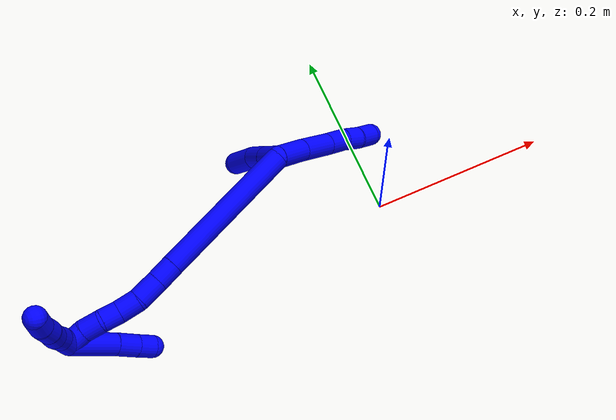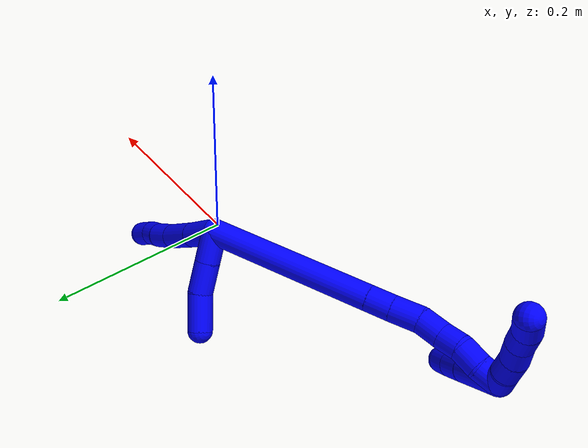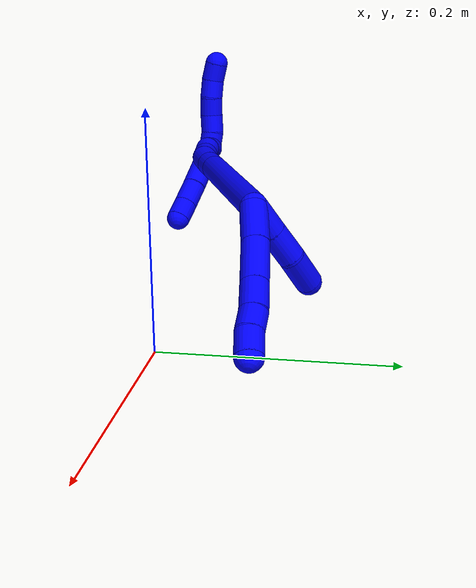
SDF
<sdf version="1.7">
 <world name="default">
  <model name="1">
   <static>0</static>
   <link name="1">
    <collision name="collision-cylinder-e_1_2_8">
     <pose>-0.002069 0.002162 -0.019111 -3.02896 -0.107177 1.52103</pose>
     <geometry><cylinder><radius>0.0125</radius><length>0.038688</length></cylinder></geometry>
     <surface>
      <friction><ode><mu>1.16</mu><mu2>1.16</mu2><slip1>0</slip1><slip2>0</slip2></ode></friction>
      <contact><ode><kp>1e+06</kp><kd>1</kd><max_vel>0</max_vel><min_depth>0.001</min_depth></ode></contact>
     </surface>
    </collision>
    <visual name="visual-cylinder-e_1_2_8">
     <pose>-0.002069 0.002162 -0.019111 -3.02896 -0.107177 1.52103</pose>
     <geometry><cylinder><radius>0.0125</radius><length>0.038688</length></cylinder></geometry>
     <material><ambient>0 0 1 1</ambient></material>
    </visual>
    <collision name="collision-cylinder-e_2_8_9">
     <pose>-0.005865 0.005421 -0.058577 -3.08773 -0.084512 2.0071</pose>
     <geometry><cylinder><radius>0.0125</radius><length>0.040915</length></cylinder></geometry>
     <surface>
      <friction><ode><mu>1.16</mu><mu2>1.16</mu2><slip1>0</slip1><slip2>0</slip2></ode></friction>
      <contact><ode><kp>1e+06</kp><kd>1</kd><max_vel>0</max_vel><min_depth>0.001</min_depth></ode></contact>
     </surface>
    </collision>
    <visual name="visual-cylinder-e_2_8_9">
     <pose>-0.005865 0.005421 -0.058577 -3.08773 -0.084512 2.0071</pose>
     <geometry><cylinder><radius>0.0125</radius><length>0.040915</length></cylinder></geometry>
     <material><ambient>0 0 1 1</ambient></material>
    </visual>
    <collision name="collision-cylinder-e_3_9_10">
     <pose>-0.007653 0.007154 -0.092827 -3.09585 -0.004354 0.18976</pose>
     <geometry><cylinder><radius>0.0125</radius><length>0.027818</length></cylinder></geometry>
     <surface>
      <friction><ode><mu>1.16</mu><mu2>1.16</mu2><slip1>0</slip1><slip2>0</slip2></ode></friction>
      <contact><ode><kp>1e+06</kp><kd>1</kd><max_vel>0</max_vel><min_depth>0.001</min_depth></ode></contact>
     </surface>
    </collision>
    <visual name="visual-cylinder-e_3_9_10">
     <pose>-0.007653 0.007154 -0.092827 -3.09585 -0.004354 0.18976</pose>
     <geometry><cylinder><radius>0.0125</radius><length>0.027818</length></cylinder></geometry>
     <material><ambient>0 0 1 1</ambient></material>
    </visual>
    <collision name="collision-cylinder-e_4_10_11">
     <pose>-0.007721 0.006824 -0.116698 3.045 -0.000715 -0.014784</pose>
     <geometry><cylinder><radius>0.0125</radius><length>0.020047</length></cylinder></geometry>
     <surface>
      <friction><ode><mu>1.16</mu><mu2>1.16</mu2><slip1>0</slip1><slip2>0</slip2></ode></friction>
      <contact><ode><kp>1e+06</kp><kd>1</kd><max_vel>0</max_vel><min_depth>0.001</min_depth></ode></contact>
     </surface>
    </collision>
    <visual name="visual-cylinder-e_4_10_11">
     <pose>-0.007721 0.006824 -0.116698 3.045 -0.000715 -0.014784</pose>
     <geometry><cylinder><radius>0.0125</radius><length>0.020047</length></cylinder></geometry>
     <material><ambient>0 0 1 1</ambient></material>
    </visual>
    <collision name="collision-cylinder-e_5_11_6">
     <pose>-0.008571 0.006585 -0.137885 -3.07671 -0.074966 1.71479</pose>
     <geometry><cylinder><radius>0.0125</radius><length>0.022532</length></cylinder></geometry>
     <surface>
      <friction><ode><mu>1.16</mu><mu2>1.16</mu2><slip1>0</slip1><slip2>0</slip2></ode></friction>
      <contact><ode><kp>1e+06</kp><kd>1</kd><max_vel>0</max_vel><min_depth>0.001</min_depth></ode></contact>
     </surface>
    </collision>
    <visual name="visual-cylinder-e_5_11_6">
     <pose>-0.008571 0.006585 -0.137885 -3.07671 -0.074966 1.71479</pose>
     <geometry><cylinder><radius>0.0125</radius><length>0.022532</length></cylinder></geometry>
     <material><ambient>0 0 1 1</ambient></material>
    </visual>
    <collision name="collision-cylinder-e_1_2_12">
     <pose>-0.012327 0.008487 -0.003363 -1.9481 -0.933343 1.27614</pose>
     <geometry><cylinder><radius>0.0125</radius><length>0.030678</length></cylinder></geometry>
     <surface>
      <friction><ode><mu>1.16</mu><mu2>1.16</mu2><slip1>0</slip1><slip2>0</slip2></ode></friction>
      <contact><ode><kp>1e+06</kp><kd>1</kd><max_vel>0</max_vel><min_depth>0.001</min_depth></ode></contact>
     </surface>
    </collision>
    <visual name="visual-cylinder-e_1_2_12">
     <pose>-0.012327 0.008487 -0.003363 -1.9481 -0.933343 1.27614</pose>
     <geometry><cylinder><radius>0.0125</radius><length>0.030678</length></cylinder></geometry>
     <material><ambient>0 0 1 1</ambient></material>
    </visual>
    <collision name="collision-cylinder-e_2_12_13">
     <pose>-0.037353 0.025851 -0.010028 -1.92685 -0.929997 1.25048</pose>
     <geometry><cylinder><radius>0.0125</radius><length>0.031686</length></cylinder></geometry>
     <surface>
      <friction><ode><mu>1.16</mu><mu2>1.16</mu2><slip1>0</slip1><slip2>0</slip2></ode></friction>
      <contact><ode><kp>1e+06</kp><kd>1</kd><max_vel>0</max_vel><min_depth>0.001</min_depth></ode></contact>
     </surface>
    </collision>
    <visual name="visual-cylinder-e_2_12_13">
     <pose>-0.037353 0.025851 -0.010028 -1.92685 -0.929997 1.25048</pose>
     <geometry><cylinder><radius>0.0125</radius><length>0.031686</length></cylinder></geometry>
     <material><ambient>0 0 1 1</ambient></material>
    </visual>
    <collision name="collision-cylinder-e_3_13_5">
     <pose>-0.066857 0.043191 -0.013734 -1.61851 -1.1038 1.14687</pose>
     <geometry><cylinder><radius>0.0125</radius><length>0.037636</length></cylinder></geometry>
     <surface>
      <friction><ode><mu>1.16</mu><mu2>1.16</mu2><slip1>0</slip1><slip2>0</slip2></ode></friction>
      <contact><ode><kp>1e+06</kp><kd>1</kd><max_vel>0</max_vel><min_depth>0.001</min_depth></ode></contact>
     </surface>
    </collision>
    <visual name="visual-cylinder-e_3_13_5">
     <pose>-0.066857 0.043191 -0.013734 -1.61851 -1.1038 1.14687</pose>
     <geometry><cylinder><radius>0.0125</radius><length>0.037636</length></cylinder></geometry>
     <material><ambient>0 0 1 1</ambient></material>
    </visual>
    <collision name="collision-cylinder-e_1_2_14">
     <pose>-0.04363 -0.024755 0.064662 0.36562 -0.562281 -0.106678</pose>
     <geometry><cylinder><radius>0.0125</radius><length>0.163677</length></cylinder></geometry>
     <surface>
      <friction><ode><mu>1.16</mu><mu2>1.16</mu2><slip1>0</slip1><slip2>0</slip2></ode></friction>
      <contact><ode><kp>1e+06</kp><kd>1</kd><max_vel>0</max_vel><min_depth>0.001</min_depth></ode></contact>
     </surface>
    </collision>
    <visual name="visual-cylinder-e_1_2_14">
     <pose>-0.04363 -0.024755 0.064662 0.36562 -0.562281 -0.106678</pose>
     <geometry><cylinder><radius>0.0125</radius><length>0.163677</length></cylinder></geometry>
     <material><ambient>0 0 1 1</ambient></material>
    </visual>
    <collision name="collision-cylinder-e_2_14_15">
     <pose>-0.093599 -0.053163 0.138504 0.37875 -0.570556 -0.112308</pose>
     <geometry><cylinder><radius>0.0125</radius><length>0.023477</length></cylinder></geometry>
     <surface>
      <friction><ode><mu>1.16</mu><mu2>1.16</mu2><slip1>0</slip1><slip2>0</slip2></ode></friction>
      <contact><ode><kp>1e+06</kp><kd>1</kd><max_vel>0</max_vel><min_depth>0.001</min_depth></ode></contact>
     </surface>
    </collision>
    <visual name="visual-cylinder-e_2_14_15">
     <pose>-0.093599 -0.053163 0.138504 0.37875 -0.570556 -0.112308</pose>
     <geometry><cylinder><radius>0.0125</radius><length>0.023477</length></cylinder></geometry>
     <material><ambient>0 0 1 1</ambient></material>
    </visual>
    <collision name="collision-cylinder-e_3_15_16">
     <pose>-0.106845 -0.06099 0.158955 0.354638 -0.521438 -0.095546</pose>
     <geometry><cylinder><radius>0.0125</radius><length>0.027726</length></cylinder></geometry>
     <surface>
      <friction><ode><mu>1.16</mu><mu2>1.16</mu2><slip1>0</slip1><slip2>0</slip2></ode></friction>
      <contact><ode><kp>1e+06</kp><kd>1</kd><max_vel>0</max_vel><min_depth>0.001</min_depth></ode></contact>
     </surface>
    </collision>
    <visual name="visual-cylinder-e_3_15_16">
     <pose>-0.106845 -0.06099 0.158955 0.354638 -0.521438 -0.095546</pose>
     <geometry><cylinder><radius>0.0125</radius><length>0.027726</length></cylinder></geometry>
     <material><ambient>0 0 1 1</ambient></material>
    </visual>
    <collision name="collision-cylinder-e_4_16_17">
     <pose>-0.120544 -0.06562 0.179715 0.047997 -0.620874 -0.015401</pose>
     <geometry><cylinder><radius>0.0125</radius><length>0.023355</length></cylinder></geometry>
     <surface>
      <friction><ode><mu>1.16</mu><mu2>1.16</mu2><slip1>0</slip1><slip2>0</slip2></ode></friction>
      <contact><ode><kp>1e+06</kp><kd>1</kd><max_vel>0</max_vel><min_depth>0.001</min_depth></ode></contact>
     </surface>
    </collision>
    <visual name="visual-cylinder-e_4_16_17">
     <pose>-0.120544 -0.06562 0.179715 0.047997 -0.620874 -0.015401</pose>
     <geometry><cylinder><radius>0.0125</radius><length>0.023355</length></cylinder></geometry>
     <material><ambient>0 0 1 1</ambient></material>
    </visual>
    <collision name="collision-cylinder-e_5_17_18">
     <pose>-0.13181 -0.06618 0.198162 0.011711 -0.463019 -0.002761</pose>
     <geometry><cylinder><radius>0.0125</radius><length>0.02003</length></cylinder></geometry>
     <surface>
      <friction><ode><mu>1.16</mu><mu2>1.16</mu2><slip1>0</slip1><slip2>0</slip2></ode></friction>
      <contact><ode><kp>1e+06</kp><kd>1</kd><max_vel>0</max_vel><min_depth>0.001</min_depth></ode></contact>
     </surface>
    </collision>
    <visual name="visual-cylinder-e_5_17_18">
     <pose>-0.13181 -0.06618 0.198162 0.011711 -0.463019 -0.002761</pose>
     <geometry><cylinder><radius>0.0125</radius><length>0.02003</length></cylinder></geometry>
     <material><ambient>0 0 1 1</ambient></material>
    </visual>
    <collision name="collision-cylinder-e_6_18_19">
     <pose>-0.143731 -0.065536 0.214824 -0.096985 -0.766229 0.039114</pose>
     <geometry><cylinder><radius>0.0125</radius><length>0.02148</length></cylinder></geometry>
     <surface>
      <friction><ode><mu>1.16</mu><mu2>1.16</mu2><slip1>0</slip1><slip2>0</slip2></ode></friction>
      <contact><ode><kp>1e+06</kp><kd>1</kd><max_vel>0</max_vel><min_depth>0.001</min_depth></ode></contact>
     </surface>
    </collision>
    <visual name="visual-cylinder-e_6_18_19">
     <pose>-0.143731 -0.065536 0.214824 -0.096985 -0.766229 0.039114</pose>
     <geometry><cylinder><radius>0.0125</radius><length>0.02148</length></cylinder></geometry>
     <material><ambient>0 0 1 1</ambient></material>
    </visual>
    <collision name="collision-cylinder-e_7_19_1">
     <pose>-0.158584 -0.066203 0.229287 0.206562 -0.820167 -0.090058</pose>
     <geometry><cylinder><radius>0.0125</radius><length>0.020254</length></cylinder></geometry>
     <surface>
      <friction><ode><mu>1.16</mu><mu2>1.16</mu2><slip1>0</slip1><slip2>0</slip2></ode></friction>
      <contact><ode><kp>1e+06</kp><kd>1</kd><max_vel>0</max_vel><min_depth>0.001</min_depth></ode></contact>
     </surface>
    </collision>
    <visual name="visual-cylinder-e_7_19_1">
     <pose>-0.158584 -0.066203 0.229287 0.206562 -0.820167 -0.090058</pose>
     <geometry><cylinder><radius>0.0125</radius><length>0.020254</length></cylinder></geometry>
     <material><ambient>0 0 1 1</ambient></material>
    </visual>
    <collision name="collision-cylinder-e_1_1_20">
     <pose>-0.15866 -0.066599 0.242775 -0.150647 0.822582 -0.065808</pose>
     <geometry><cylinder><radius>0.0125</radius><length>0.02</length></cylinder></geometry>
     <surface>
      <friction><ode><mu>1.16</mu><mu2>1.16</mu2><slip1>0</slip1><slip2>0</slip2></ode></friction>
      <contact><ode><kp>1e+06</kp><kd>1</kd><max_vel>0</max_vel><min_depth>0.001</min_depth></ode></contact>
     </surface>
    </collision>
    <visual name="visual-cylinder-e_1_1_20">
     <pose>-0.15866 -0.066599 0.242775 -0.150647 0.822582 -0.065808</pose>
     <geometry><cylinder><radius>0.0125</radius><length>0.02</length></cylinder></geometry>
     <material><ambient>0 0 1 1</ambient></material>
    </visual>
    <collision name="collision-cylinder-e_2_20_21">
     <pose>-0.144009 -0.066565 0.25624 0.145478 0.821549 0.063454</pose>
     <geometry><cylinder><radius>0.0125</radius><length>0.02</length></cylinder></geometry>
     <surface>
      <friction><ode><mu>1.16</mu><mu2>1.16</mu2><slip1>0</slip1><slip2>0</slip2></ode></friction>
      <contact><ode><kp>1e+06</kp><kd>1</kd><max_vel>0</max_vel><min_depth>0.001</min_depth></ode></contact>
     </surface>
    </collision>
    <visual name="visual-cylinder-e_2_20_21">
     <pose>-0.144009 -0.066565 0.25624 0.145478 0.821549 0.063454</pose>
     <geometry><cylinder><radius>0.0125</radius><length>0.02</length></cylinder></geometry>
     <material><ambient>0 0 1 1</ambient></material>
    </visual>
    <collision name="collision-cylinder-e_3_21_22">
     <pose>-0.128345 -0.067913 0.268482 0.065345 0.986688 0.035144</pose>
     <geometry><cylinder><radius>0.0125</radius><length>0.02</length></cylinder></geometry>
     <surface>
      <friction><ode><mu>1.16</mu><mu2>1.16</mu2><slip1>0</slip1><slip2>0</slip2></ode></friction>
      <contact><ode><kp>1e+06</kp><kd>1</kd><max_vel>0</max_vel><min_depth>0.001</min_depth></ode></contact>
     </surface>
    </collision>
    <visual name="visual-cylinder-e_3_21_22">
     <pose>-0.128345 -0.067913 0.268482 0.065345 0.986688 0.035144</pose>
     <geometry><cylinder><radius>0.0125</radius><length>0.02</length></cylinder></geometry>
     <material><ambient>0 0 1 1</ambient></material>
    </visual>
    <collision name="collision-cylinder-e_4_22_23">
     <pose>-0.112499 -0.06782 0.280578 -0.068516 0.848771 -0.030968</pose>
     <geometry><cylinder><radius>0.0125</radius><length>0.02</length></cylinder></geometry>
     <surface>
      <friction><ode><mu>1.16</mu><mu2>1.16</mu2><slip1>0</slip1><slip2>0</slip2></ode></friction>
      <contact><ode><kp>1e+06</kp><kd>1</kd><max_vel>0</max_vel><min_depth>0.001</min_depth></ode></contact>
     </surface>
    </collision>
    <visual name="visual-cylinder-e_4_22_23">
     <pose>-0.112499 -0.06782 0.280578 -0.068516 0.848771 -0.030968</pose>
     <geometry><cylinder><radius>0.0125</radius><length>0.02</length></cylinder></geometry>
     <material><ambient>0 0 1 1</ambient></material>
    </visual>
    <collision name="collision-cylinder-e_5_23_4">
     <pose>-0.096684 -0.06549 0.292407 -0.344339 0.980923 -0.185178</pose>
     <geometry><cylinder><radius>0.0125</radius><length>0.02</length></cylinder></geometry>
     <surface>
      <friction><ode><mu>1.16</mu><mu2>1.16</mu2><slip1>0</slip1><slip2>0</slip2></ode></friction>
      <contact><ode><kp>1e+06</kp><kd>1</kd><max_vel>0</max_vel><min_depth>0.001</min_depth></ode></contact>
     </surface>
    </collision>
    <visual name="visual-cylinder-e_5_23_4">
     <pose>-0.096684 -0.06549 0.292407 -0.344339 0.980923 -0.185178</pose>
     <geometry><cylinder><radius>0.0125</radius><length>0.02</length></cylinder></geometry>
     <material><ambient>0 0 1 1</ambient></material>
    </visual>
    <collision name="collision-cylinder-e_1_1_24">
     <pose>-0.169761 -0.074069 0.210168 2.89737 -0.140483 -1.04114</pose>
     <geometry><cylinder><radius>0.0125</radius><length>0.053875</length></cylinder></geometry>
     <surface>
      <friction><ode><mu>1.16</mu><mu2>1.16</mu2><slip1>0</slip1><slip2>0</slip2></ode></friction>
      <contact><ode><kp>1e+06</kp><kd>1</kd><max_vel>0</max_vel><min_depth>0.001</min_depth></ode></contact>
     </surface>
    </collision>
    <visual name="visual-cylinder-e_1_1_24">
     <pose>-0.169761 -0.074069 0.210168 2.89737 -0.140483 -1.04114</pose>
     <geometry><cylinder><radius>0.0125</radius><length>0.053875</length></cylinder></geometry>
     <material><ambient>0 0 1 1</ambient></material>
    </visual>
    <collision name="collision-cylinder-e_2_24_25">
     <pose>-0.175877 -0.084097 0.172057 2.85693 -0.181871 -1.13342</pose>
     <geometry><cylinder><radius>0.0125</radius><length>0.025912</length></cylinder></geometry>
     <surface>
      <friction><ode><mu>1.16</mu><mu2>1.16</mu2><slip1>0</slip1><slip2>0</slip2></ode></friction>
      <contact><ode><kp>1e+06</kp><kd>1</kd><max_vel>0</max_vel><min_depth>0.001</min_depth></ode></contact>
     </surface>
    </collision>
    <visual name="visual-cylinder-e_2_24_25">
     <pose>-0.175877 -0.084097 0.172057 2.85693 -0.181871 -1.13342</pose>
     <geometry><cylinder><radius>0.0125</radius><length>0.025912</length></cylinder></geometry>
     <material><ambient>0 0 1 1</ambient></material>
    </visual>
    <collision name="collision-cylinder-e_3_25_3">
     <pose>-0.179654 -0.09049 0.150228 2.8564 -0.142362 -0.921883</pose>
     <geometry><cylinder><radius>0.0125</radius><length>0.020213</length></cylinder></geometry>
     <surface>
      <friction><ode><mu>1.16</mu><mu2>1.16</mu2><slip1>0</slip1><slip2>0</slip2></ode></friction>
      <contact><ode><kp>1e+06</kp><kd>1</kd><max_vel>0</max_vel><min_depth>0.001</min_depth></ode></contact>
     </surface>
    </collision>
    <visual name="visual-cylinder-e_3_25_3">
     <pose>-0.179654 -0.09049 0.150228 2.8564 -0.142362 -0.921883</pose>
     <geometry><cylinder><radius>0.0125</radius><length>0.020213</length></cylinder></geometry>
     <material><ambient>0 0 1 1</ambient></material>
    </visual>
    <collision name="collision-sphere-3">
     <pose>-0.181088 -0.093305 0.140628 0 -0 0</pose>
     <geometry><sphere><radius>0.0125</radius></sphere></geometry>
     <surface>
      <friction><ode><mu>1.16</mu><mu2>1.16</mu2><slip1>0</slip1><slip2>0</slip2></ode></friction>
      <contact><ode><kp>1e+06</kp><kd>1</kd><max_vel>0</max_vel><min_depth>0.001</min_depth></ode></contact>
     </surface>
    </collision>
    <visual name="visual-sphere-3">
     <pose>-0.181088 -0.093305 0.140628 0 -0 0</pose>
     <geometry><sphere><radius>0.0125</radius></sphere></geometry>
     <material><ambient>0 0 1 1</ambient></material>
    </visual>
    <collision name="collision-sphere-25">
     <pose>-0.17822 -0.087676 0.159828 0 -0 0</pose>
     <geometry><sphere><radius>0.0125</radius></sphere></geometry>
     <surface>
      <friction><ode><mu>1.16</mu><mu2>1.16</mu2><slip1>0</slip1><slip2>0</slip2></ode></friction>
      <contact><ode><kp>1e+06</kp><kd>1</kd><max_vel>0</max_vel><min_depth>0.001</min_depth></ode></contact>
     </surface>
    </collision>
    <visual name="visual-sphere-25">
     <pose>-0.17822 -0.087676 0.159828 0 -0 0</pose>
     <geometry><sphere><radius>0.0125</radius></sphere></geometry>
     <material><ambient>0 0 1 1</ambient></material>
    </visual>
    <collision name="collision-sphere-24">
     <pose>-0.173533 -0.080519 0.184287 0 -0 0</pose>
     <geometry><sphere><radius>0.0125</radius></sphere></geometry>
     <surface>
      <friction><ode><mu>1.16</mu><mu2>1.16</mu2><slip1>0</slip1><slip2>0</slip2></ode></friction>
      <contact><ode><kp>1e+06</kp><kd>1</kd><max_vel>0</max_vel><min_depth>0.001</min_depth></ode></contact>
     </surface>
    </collision>
    <visual name="visual-sphere-24">
     <pose>-0.173533 -0.080519 0.184287 0 -0 0</pose>
     <geometry><sphere><radius>0.0125</radius></sphere></geometry>
     <material><ambient>0 0 1 1</ambient></material>
    </visual>
    <collision name="collision-sphere-4">
     <pose>-0.088374 -0.063612 0.297644 0 -0 0</pose>
     <geometry><sphere><radius>0.0125</radius></sphere></geometry>
     <surface>
      <friction><ode><mu>1.16</mu><mu2>1.16</mu2><slip1>0</slip1><slip2>0</slip2></ode></friction>
      <contact><ode><kp>1e+06</kp><kd>1</kd><max_vel>0</max_vel><min_depth>0.001</min_depth></ode></contact>
     </surface>
    </collision>
    <visual name="visual-sphere-4">
     <pose>-0.088374 -0.063612 0.297644 0 -0 0</pose>
     <geometry><sphere><radius>0.0125</radius></sphere></geometry>
     <material><ambient>0 0 1 1</ambient></material>
    </visual>
    <collision name="collision-sphere-23">
     <pose>-0.104994 -0.067368 0.287171 0 -0 0</pose>
     <geometry><sphere><radius>0.0125</radius></sphere></geometry>
     <surface>
      <friction><ode><mu>1.16</mu><mu2>1.16</mu2><slip1>0</slip1><slip2>0</slip2></ode></friction>
      <contact><ode><kp>1e+06</kp><kd>1</kd><max_vel>0</max_vel><min_depth>0.001</min_depth></ode></contact>
     </surface>
    </collision>
    <visual name="visual-sphere-23">
     <pose>-0.104994 -0.067368 0.287171 0 -0 0</pose>
     <geometry><sphere><radius>0.0125</radius></sphere></geometry>
     <material><ambient>0 0 1 1</ambient></material>
    </visual>
    <collision name="collision-sphere-22">
     <pose>-0.120003 -0.068273 0.273984 0 -0 0</pose>
     <geometry><sphere><radius>0.0125</radius></sphere></geometry>
     <surface>
      <friction><ode><mu>1.16</mu><mu2>1.16</mu2><slip1>0</slip1><slip2>0</slip2></ode></friction>
      <contact><ode><kp>1e+06</kp><kd>1</kd><max_vel>0</max_vel><min_depth>0.001</min_depth></ode></contact>
     </surface>
    </collision>
    <visual name="visual-sphere-22">
     <pose>-0.120003 -0.068273 0.273984 0 -0 0</pose>
     <geometry><sphere><radius>0.0125</radius></sphere></geometry>
     <material><ambient>0 0 1 1</ambient></material>
    </visual>
    <collision name="collision-sphere-21">
     <pose>-0.136687 -0.067553 0.262979 0 -0 0</pose>
     <geometry><sphere><radius>0.0125</radius></sphere></geometry>
     <surface>
      <friction><ode><mu>1.16</mu><mu2>1.16</mu2><slip1>0</slip1><slip2>0</slip2></ode></friction>
      <contact><ode><kp>1e+06</kp><kd>1</kd><max_vel>0</max_vel><min_depth>0.001</min_depth></ode></contact>
     </surface>
    </collision>
    <visual name="visual-sphere-21">
     <pose>-0.136687 -0.067553 0.262979 0 -0 0</pose>
     <geometry><sphere><radius>0.0125</radius></sphere></geometry>
     <material><ambient>0 0 1 1</ambient></material>
    </visual>
    <collision name="collision-sphere-20">
     <pose>-0.151331 -0.065578 0.249501 0 -0 0</pose>
     <geometry><sphere><radius>0.0125</radius></sphere></geometry>
     <surface>
      <friction><ode><mu>1.16</mu><mu2>1.16</mu2><slip1>0</slip1><slip2>0</slip2></ode></friction>
      <contact><ode><kp>1e+06</kp><kd>1</kd><max_vel>0</max_vel><min_depth>0.001</min_depth></ode></contact>
     </surface>
    </collision>
    <visual name="visual-sphere-20">
     <pose>-0.151331 -0.065578 0.249501 0 -0 0</pose>
     <geometry><sphere><radius>0.0125</radius></sphere></geometry>
     <material><ambient>0 0 1 1</ambient></material>
    </visual>
    <collision name="collision-sphere-6">
     <pose>-0.009415 0.007314 -0.149096 0 -0 0</pose>
     <geometry><sphere><radius>0.0125</radius></sphere></geometry>
     <surface>
      <friction><ode><mu>1.16</mu><mu2>1.16</mu2><slip1>0</slip1><slip2>0</slip2></ode></friction>
      <contact><ode><kp>1e+06</kp><kd>1</kd><max_vel>0</max_vel><min_depth>0.001</min_depth></ode></contact>
     </surface>
    </collision>
    <visual name="visual-sphere-6">
     <pose>-0.009415 0.007314 -0.149096 0 -0 0</pose>
     <geometry><sphere><radius>0.0125</radius></sphere></geometry>
     <material><ambient>0 0 1 1</ambient></material>
    </visual>
    <collision name="collision-sphere-11">
     <pose>-0.007728 0.005857 -0.126675 0 -0 0</pose>
     <geometry><sphere><radius>0.0125</radius></sphere></geometry>
     <surface>
      <friction><ode><mu>1.16</mu><mu2>1.16</mu2><slip1>0</slip1><slip2>0</slip2></ode></friction>
      <contact><ode><kp>1e+06</kp><kd>1</kd><max_vel>0</max_vel><min_depth>0.001</min_depth></ode></contact>
     </surface>
    </collision>
    <visual name="visual-sphere-11">
     <pose>-0.007728 0.005857 -0.126675 0 -0 0</pose>
     <geometry><sphere><radius>0.0125</radius></sphere></geometry>
     <material><ambient>0 0 1 1</ambient></material>
    </visual>
    <collision name="collision-sphere-10">
     <pose>-0.007713 0.00779 -0.106721 0 -0 0</pose>
     <geometry><sphere><radius>0.0125</radius></sphere></geometry>
     <surface>
      <friction><ode><mu>1.16</mu><mu2>1.16</mu2><slip1>0</slip1><slip2>0</slip2></ode></friction>
      <contact><ode><kp>1e+06</kp><kd>1</kd><max_vel>0</max_vel><min_depth>0.001</min_depth></ode></contact>
     </surface>
    </collision>
    <visual name="visual-sphere-10">
     <pose>-0.007713 0.00779 -0.106721 0 -0 0</pose>
     <geometry><sphere><radius>0.0125</radius></sphere></geometry>
     <material><ambient>0 0 1 1</ambient></material>
    </visual>
    <collision name="collision-sphere-9">
     <pose>-0.007592 0.006518 -0.078932 0 -0 0</pose>
     <geometry><sphere><radius>0.0125</radius></sphere></geometry>
     <surface>
      <friction><ode><mu>1.16</mu><mu2>1.16</mu2><slip1>0</slip1><slip2>0</slip2></ode></friction>
      <contact><ode><kp>1e+06</kp><kd>1</kd><max_vel>0</max_vel><min_depth>0.001</min_depth></ode></contact>
     </surface>
    </collision>
    <visual name="visual-sphere-9">
     <pose>-0.007592 0.006518 -0.078932 0 -0 0</pose>
     <geometry><sphere><radius>0.0125</radius></sphere></geometry>
     <material><ambient>0 0 1 1</ambient></material>
    </visual>
    <collision name="collision-sphere-2">
     <geometry><sphere><radius>0.0125</radius></sphere></geometry>
     <surface>
      <friction><ode><mu>1.16</mu><mu2>1.16</mu2><slip1>0</slip1><slip2>0</slip2></ode></friction>
      <contact><ode><kp>1e+06</kp><kd>1</kd><max_vel>0</max_vel><min_depth>0.001</min_depth></ode></contact>
     </surface>
    </collision>
    <visual name="visual-sphere-2">
     <geometry><sphere><radius>0.0125</radius></sphere></geometry>
     <material><ambient>0 0 1 1</ambient></material>
    </visual>
    <collision name="collision-sphere-19">
     <pose>-0.151178 -0.064786 0.222527 0 -0 0</pose>
     <geometry><sphere><radius>0.0125</radius></sphere></geometry>
     <surface>
      <friction><ode><mu>1.16</mu><mu2>1.16</mu2><slip1>0</slip1><slip2>0</slip2></ode></friction>
      <contact><ode><kp>1e+06</kp><kd>1</kd><max_vel>0</max_vel><min_depth>0.001</min_depth></ode></contact>
     </surface>
    </collision>
    <visual name="visual-sphere-19">
     <pose>-0.151178 -0.064786 0.222527 0 -0 0</pose>
     <geometry><sphere><radius>0.0125</radius></sphere></geometry>
     <material><ambient>0 0 1 1</ambient></material>
    </visual>
    <collision name="collision-sphere-8">
     <pose>-0.004139 0.004324 -0.038222 0 -0 0</pose>
     <geometry><sphere><radius>0.0125</radius></sphere></geometry>
     <surface>
      <friction><ode><mu>1.16</mu><mu2>1.16</mu2><slip1>0</slip1><slip2>0</slip2></ode></friction>
      <contact><ode><kp>1e+06</kp><kd>1</kd><max_vel>0</max_vel><min_depth>0.001</min_depth></ode></contact>
     </surface>
    </collision>
    <visual name="visual-sphere-8">
     <pose>-0.004139 0.004324 -0.038222 0 -0 0</pose>
     <geometry><sphere><radius>0.0125</radius></sphere></geometry>
     <material><ambient>0 0 1 1</ambient></material>
    </visual>
    <collision name="collision-sphere-12">
     <pose>-0.024653 0.016974 -0.006727 0 -0 0</pose>
     <geometry><sphere><radius>0.0125</radius></sphere></geometry>
     <surface>
      <friction><ode><mu>1.16</mu><mu2>1.16</mu2><slip1>0</slip1><slip2>0</slip2></ode></friction>
      <contact><ode><kp>1e+06</kp><kd>1</kd><max_vel>0</max_vel><min_depth>0.001</min_depth></ode></contact>
     </surface>
    </collision>
    <visual name="visual-sphere-12">
     <pose>-0.024653 0.016974 -0.006727 0 -0 0</pose>
     <geometry><sphere><radius>0.0125</radius></sphere></geometry>
     <material><ambient>0 0 1 1</ambient></material>
    </visual>
    <collision name="collision-sphere-13">
     <pose>-0.050054 0.034729 -0.01333 0 -0 0</pose>
     <geometry><sphere><radius>0.0125</radius></sphere></geometry>
     <surface>
      <friction><ode><mu>1.16</mu><mu2>1.16</mu2><slip1>0</slip1><slip2>0</slip2></ode></friction>
      <contact><ode><kp>1e+06</kp><kd>1</kd><max_vel>0</max_vel><min_depth>0.001</min_depth></ode></contact>
     </surface>
    </collision>
    <visual name="visual-sphere-13">
     <pose>-0.050054 0.034729 -0.01333 0 -0 0</pose>
     <geometry><sphere><radius>0.0125</radius></sphere></geometry>
     <material><ambient>0 0 1 1</ambient></material>
    </visual>
    <collision name="collision-sphere-5">
     <pose>-0.083659 0.051653 -0.014138 0 -0 0</pose>
     <geometry><sphere><radius>0.0125</radius></sphere></geometry>
     <surface>
      <friction><ode><mu>1.16</mu><mu2>1.16</mu2><slip1>0</slip1><slip2>0</slip2></ode></friction>
      <contact><ode><kp>1e+06</kp><kd>1</kd><max_vel>0</max_vel><min_depth>0.001</min_depth></ode></contact>
     </surface>
    </collision>
    <visual name="visual-sphere-5">
     <pose>-0.083659 0.051653 -0.014138 0 -0 0</pose>
     <geometry><sphere><radius>0.0125</radius></sphere></geometry>
     <material><ambient>0 0 1 1</ambient></material>
    </visual>
    <collision name="collision-sphere-14">
     <pose>-0.087259 -0.04951 0.129325 0 -0 0</pose>
     <geometry><sphere><radius>0.0125</radius></sphere></geometry>
     <surface>
      <friction><ode><mu>1.16</mu><mu2>1.16</mu2><slip1>0</slip1><slip2>0</slip2></ode></friction>
      <contact><ode><kp>1e+06</kp><kd>1</kd><max_vel>0</max_vel><min_depth>0.001</min_depth></ode></contact>
     </surface>
    </collision>
    <visual name="visual-sphere-14">
     <pose>-0.087259 -0.04951 0.129325 0 -0 0</pose>
     <geometry><sphere><radius>0.0125</radius></sphere></geometry>
     <material><ambient>0 0 1 1</ambient></material>
    </visual>
    <collision name="collision-sphere-15">
     <pose>-0.099939 -0.056816 0.147683 0 -0 0</pose>
     <geometry><sphere><radius>0.0125</radius></sphere></geometry>
     <surface>
      <friction><ode><mu>1.16</mu><mu2>1.16</mu2><slip1>0</slip1><slip2>0</slip2></ode></friction>
      <contact><ode><kp>1e+06</kp><kd>1</kd><max_vel>0</max_vel><min_depth>0.001</min_depth></ode></contact>
     </surface>
    </collision>
    <visual name="visual-sphere-15">
     <pose>-0.099939 -0.056816 0.147683 0 -0 0</pose>
     <geometry><sphere><radius>0.0125</radius></sphere></geometry>
     <material><ambient>0 0 1 1</ambient></material>
    </visual>
    <collision name="collision-sphere-16">
     <pose>-0.11375 -0.065164 0.170228 0 -0 0</pose>
     <geometry><sphere><radius>0.0125</radius></sphere></geometry>
     <surface>
      <friction><ode><mu>1.16</mu><mu2>1.16</mu2><slip1>0</slip1><slip2>0</slip2></ode></friction>
      <contact><ode><kp>1e+06</kp><kd>1</kd><max_vel>0</max_vel><min_depth>0.001</min_depth></ode></contact>
     </surface>
    </collision>
    <visual name="visual-sphere-16">
     <pose>-0.11375 -0.065164 0.170228 0 -0 0</pose>
     <geometry><sphere><radius>0.0125</radius></sphere></geometry>
     <material><ambient>0 0 1 1</ambient></material>
    </visual>
    <collision name="collision-sphere-17">
     <pose>-0.127337 -0.066075 0.189202 0 -0 0</pose>
     <geometry><sphere><radius>0.0125</radius></sphere></geometry>
     <surface>
      <friction><ode><mu>1.16</mu><mu2>1.16</mu2><slip1>0</slip1><slip2>0</slip2></ode></friction>
      <contact><ode><kp>1e+06</kp><kd>1</kd><max_vel>0</max_vel><min_depth>0.001</min_depth></ode></contact>
     </surface>
    </collision>
    <visual name="visual-sphere-17">
     <pose>-0.127337 -0.066075 0.189202 0 -0 0</pose>
     <geometry><sphere><radius>0.0125</radius></sphere></geometry>
     <material><ambient>0 0 1 1</ambient></material>
    </visual>
    <collision name="collision-sphere-18">
     <pose>-0.136284 -0.066285 0.207122 0 -0 0</pose>
     <geometry><sphere><radius>0.0125</radius></sphere></geometry>
     <surface>
      <friction><ode><mu>1.16</mu><mu2>1.16</mu2><slip1>0</slip1><slip2>0</slip2></ode></friction>
      <contact><ode><kp>1e+06</kp><kd>1</kd><max_vel>0</max_vel><min_depth>0.001</min_depth></ode></contact>
     </surface>
    </collision>
    <visual name="visual-sphere-18">
     <pose>-0.136284 -0.066285 0.207122 0 -0 0</pose>
     <geometry><sphere><radius>0.0125</radius></sphere></geometry>
     <material><ambient>0 0 1 1</ambient></material>
    </visual>
    <collision name="collision-sphere-1">
     <pose>-0.165989 -0.06762 0.236048 0 -0 0</pose>
     <geometry><sphere><radius>0.0125</radius></sphere></geometry>
     <surface>
      <friction><ode><mu>1.16</mu><mu2>1.16</mu2><slip1>0</slip1><slip2>0</slip2></ode></friction>
      <contact><ode><kp>1e+06</kp><kd>1</kd><max_vel>0</max_vel><min_depth>0.001</min_depth></ode></contact>
     </surface>
    </collision>
    <visual name="visual-sphere-1">
     <pose>-0.165989 -0.06762 0.236048 0 -0 0</pose>
     <geometry><sphere><radius>0.0125</radius></sphere></geometry>
     <material><ambient>0 0 1 1</ambient></material>
    </visual>
    <inertial>
     <pose>-0.078871 -0.031719 0.092257 0 -0 0</pose>
     <mass>0.75</mass>
     <inertia>
      <ixx>0.000296</ixx>
      <ixy>0</ixy>
      <ixz>0</ixz>
      <iyy>0.00034</iyy>
      <iyz>0</iyz>
      <izz>0.000328</izz>
     </inertia>
    </inertial>
   </link>
   <pose>-0.095666 0.066032 0.098603 -0.085623 -1.01807 0.17884</pose>
  </model>
 </world>
</sdf>
